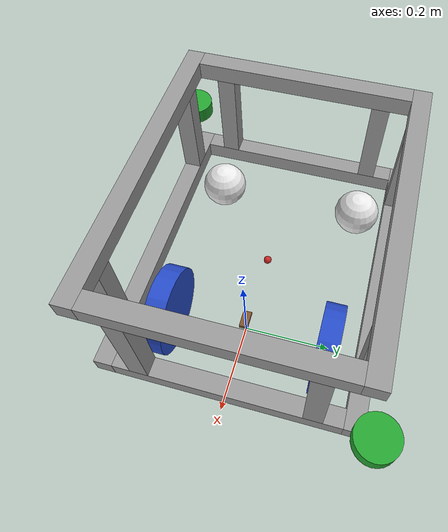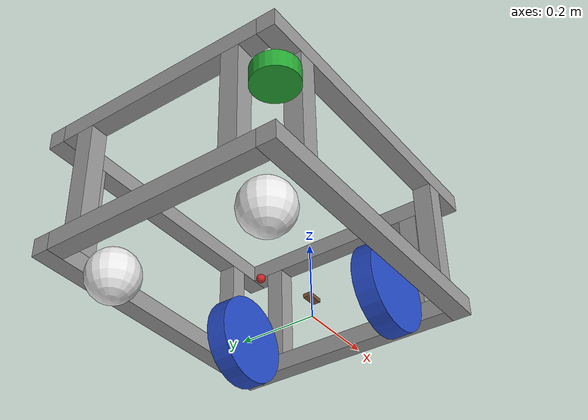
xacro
<?xml version='1.0'?>

<robot name="mensabot" xmlns:xacro="http://www.ros.org/wiki/xacro">

  <xacro:arg name="use_sim" default="false"/>

  <!-- nur wenn Simulation -->
  <xacro:if value="$(arg use_sim)">
    <xacro:include filename="$(find mensabot_sim)/urdf/mensabot.gazebo" />
  </xacro:if>

  <xacro:include filename="$(find mensabot_sim)/urdf/materials.xacro" />

  <joint name="base_footprint_joint" type="fixed">
    <origin xyz="0 0 -0.11" rpy="0 0 0" />
    <parent link="base_link"/>
    <child link="base_footprint" />
  </joint>

  <link name="base_footprint">
    <inertial>
      <mass value="25.0"/>
      <origin xyz="-0.08 0 0.21"/>      <!-- Center of mass -->
      <inertia
        ixx="1.2" iyy="1.5" izz="2.0"
        ixy="0" ixz="0" iyz="0"/>
    </inertial>
  </link>

  <link name='base_link'>
    <collision name="base_collision">
      <origin xyz="-0.2 0 0.15" rpy="0 0 0"/>       <!-- Collision geometry -->
      <geometry>
        <box size="0.7 0.55 0.01"/>
      </geometry>
    </collision>

    <collision name='left_caster_collision'>
      <origin xyz="-0.45 0.2 -0.0475" rpy=" 0 0 0"/>
      <geometry>
        <sphere radius="0.0625"/>
      </geometry>
    </collision>

    <visual name='left_caster_visual'>
      <origin xyz="-0.45 0.2 -0.0475 " rpy=" 0 0 0"/>
      <geometry>
        <sphere radius="0.0625"/>
      </geometry>
      <material name="white"/>
    </visual>

    <collision name='right_caster_collision'>
      <origin xyz="-0.45 -0.2 -0.0475" rpy=" 0 0 0"/>
      <geometry>
        <sphere radius="0.0625"/>
      </geometry>
    </collision>

    <visual name='right_caster_visual'>
      <origin xyz="-0.45 -0.2 -0.0475" rpy=" 0 0 0"/>
      <geometry>
        <sphere radius="0.0625"/>
      </geometry>
      <material name="white"/>
    </visual>
  </link>

  <gazebo reference="base_link">
    <material>Gazebo/Orange</material>
  </gazebo>

  <!--CENTER LINK-->

  <joint name="center_joint" type="fixed">
    <origin xyz="-0.2 0 0" rpy="0 0 0" />
    <parent link="base_link"/>
    <child link="center_link" />
  </joint>

  <link name="center_link">
    <visual name='center_visual'>
       <geometry>
         <sphere radius="0.01"/>
       </geometry>
       <material name="red"/>
    </visual>
  </link>

<!-- Bottom Layer -->

  <joint name="bottom_front_rod_joint" type="fixed">
    <origin xyz="0.355 0 0" rpy="0 0 ${pi/2}" />
    <parent link="center_link"/>
    <child link="bottom_front_rod_link" />
  </joint>

  <link name="bottom_front_rod_link">
    <visual name='bottom_front_rod_visual'>
       <geometry>
         <box size="0.538 0.045 0.045"/>
       </geometry>
       <material name="grey"/>
    </visual>

  </link>

  <joint name="bottom_rear_rod_joint" type="fixed">
    <origin xyz="-0.355 0 0" rpy="0 0 ${pi/2}" />
    <parent link="center_link"/>
    <child link="bottom_rear_rod_link" />
  </joint>

  <link name="bottom_rear_rod_link">
    <visual name='bottom_rear_rod_visual'>
       <geometry>
         <box size="0.538 0.045 0.045"/>
       </geometry>
       <material name="grey"/>
    </visual>

  </link>

  <joint name="bottom_left_rod_joint" type="fixed">
    <origin xyz="0.0 0.2915 0" rpy="0 0 0" />
    <parent link="center_link"/>
    <child link="bottom_left_rod_link" />
  </joint>

  <link name="bottom_left_rod_link">
    <visual name='bottom_left_rod_visual'>
       <geometry>
         <box size="0.755 0.045 0.045"/>
       </geometry>
       <material name="grey"/>
    </visual>

  </link>

  <joint name="bottom_right_rod_joint" type="fixed">
    <origin xyz="0.0 -0.2915 0" rpy="0 0 0" />
    <parent link="center_link"/>
    <child link="bottom_right_rod_link" />
  </joint>

  <link name="bottom_right_rod_link">
    <visual name='bottom_right_rod_visual'>
       <geometry>
         <box size="0.755 0.045 0.045"/>
       </geometry>
       <material name="grey"/>
    </visual>

  </link>

  <!-- Top Layer -->

  <joint name="top_front_rod_joint" type="fixed">
    <origin xyz="0.355 0 0.295" rpy="0 0 ${pi/2}" />
    <parent link="center_link"/>
    <child link="top_front_rod_link" />
  </joint>

  <link name="top_front_rod_link">
    <visual name='top_front_rod_visual'>
       <geometry>
         <box size="0.538 0.045 0.045"/>
       </geometry>
       <material name="grey"/>
    </visual>

  </link>

  <joint name="top_rear_rod_joint" type="fixed">
    <origin xyz="-0.355 0 0.295" rpy="0 0 ${pi/2}" />
    <parent link="center_link"/>
    <child link="top_rear_rod_link" />
  </joint>

  <link name="top_rear_rod_link">
    <visual name='top_rear_rod_visual'>
       <geometry>
         <box size="0.538 0.045 0.045"/>
       </geometry>
       <material name="grey"/>
    </visual>

  </link>

  <joint name="top_left_rod_joint" type="fixed">
    <origin xyz="0.0 0.2915 0.295" rpy="0 0 0" />
    <parent link="center_link"/>
    <child link="top_left_rod_link" />
  </joint>

  <link name="top_left_rod_link">
    <visual name='top_left_rod_visual'>
       <geometry>
         <box size="0.755 0.045 0.045"/>
       </geometry>
       <material name="grey"/>
    </visual>

  </link>

  <joint name="top_right_rod_joint" type="fixed">
    <origin xyz="0.0 -0.2915 0.295" rpy="0 0 0" />
    <parent link="center_link"/>
    <child link="top_right_rod_link" />
  </joint>

  <link name="top_right_rod_link">
    <visual name='top_right_rod_visual'>
       <geometry>
         <box size="0.755 0.045 0.045"/>
       </geometry>
       <material name="grey"/>
    </visual>

  </link>

  <!-- Vertical Rods -->

  <joint name="front_right1_joint" type="fixed">
    <origin xyz="0.355 0.2015 0.1475" rpy="0 ${pi/2} 0" />
    <parent link="center_link"/>
    <child link="front_right1_link" />
  </joint>

  <link name="front_right1_link">
    <visual name='front_right1_visual'>
       <geometry>
         <box size="0.25 0.045 0.045"/>
       </geometry>
       <material name="grey"/>
    </visual>

  </link>

  <joint name="front_left1_joint" type="fixed">
    <origin xyz="0.355 -0.2015 0.1475" rpy="0 ${pi/2} 0" />
    <parent link="center_link"/>
    <child link="front_left1_link" />
  </joint>

  <link name="front_left1_link">
    <visual name='front_left1_visual'>
       <geometry>
         <box size="0.25 0.045 0.045"/>
       </geometry>
       <material name="grey"/>
    </visual>

  </link>

  <joint name="front_right2_joint" type="fixed">
    <origin xyz="0.265 0.2915 0.1475" rpy="0 ${pi/2} 0" />
    <parent link="center_link"/>
    <child link="front_right2_link" />
  </joint>

  <link name="front_right2_link">
    <visual name='front_right2_visual'>
       <geometry>
         <box size="0.25 0.045 0.045"/>
       </geometry>
       <material name="grey"/>
    </visual>

  </link>

  <joint name="front_left2_joint" type="fixed">
    <origin xyz="0.265 -0.2915 0.1475" rpy="0 ${pi/2} 0" />
    <parent link="center_link"/>
    <child link="front_left2_link" />
  </joint>

  <link name="front_left2_link">
    <visual name='front_left2_visual'>
       <geometry>
         <box size="0.25 0.045 0.045"/>
       </geometry>
       <material name="grey"/>
    </visual>

  </link>

  <joint name="back_left1_joint" type="fixed">
    <origin xyz="-0.355 -0.2015 0.1475" rpy="0 ${pi/2} 0" />
    <parent link="center_link"/>
    <child link="back_left1_link" />
  </joint>

  <link name="back_left1_link">
    <visual name='back_left1_visual'>
       <geometry>
         <box size="0.25 0.045 0.045"/>
       </geometry>
       <material name="grey"/>
    </visual>

  </link>

  <joint name="back_right1_joint" type="fixed">
    <origin xyz="-0.355 0.2015 0.1475" rpy="0 ${pi/2} 0" />
    <parent link="center_link"/>
    <child link="back_right1_link" />
  </joint>

  <link name="back_right1_link">
    <visual name='back_right1_visual'>
       <geometry>
         <box size="0.25 0.045 0.045"/>
       </geometry>
       <material name="grey"/>
    </visual>

  </link>

  <joint name="back_left2_joint" type="fixed">
    <origin xyz="-0.265 -0.2915 0.1475" rpy="0 ${pi/2} 0" />
    <parent link="center_link"/>
    <child link="back_left2_link" />
  </joint>

  <link name="back_left2_link">
    <visual name='back_left2_visual'>
       <geometry>
         <box size="0.25 0.045 0.045"/>
       </geometry>
       <material name="grey"/>
    </visual>

  </link>

  <joint name="back_right2_joint" type="fixed">
    <origin xyz="-0.265 0.2915 0.1475" rpy="0 ${pi/2} 0" />
    <parent link="center_link"/>
    <child link="back_right2_link" />
  </joint>

  <link name="back_right2_link">
    <visual name='back_right2_visual'>
       <geometry>
         <box size="0.25 0.045 0.045"/>
       </geometry>
       <material name="grey"/>
    </visual>

  </link>

  <!--LEFT WHEEL-->

  <joint type="continuous" name="left_wheel_joint">
    <origin xyz="0.0 0.2 0" rpy="0 0 0"/>
    <child link="left_wheel"/>
    <parent link="base_link"/>
    <axis xyz="0 1 0" rpy="0 0 0"/>
    <limit effort="100" velocity="10"/>
    <dynamics damping="1.0" friction="1.0"/>
  </joint>

  <link name='left_wheel'>
    <inertial>
      <mass value="5.0"/>
      <origin xyz="0 0 0" rpy="0 1.5707 1.5707"/>
      <inertia ixx="0.014" ixy="0" ixz="0" iyy="0.014" iyz="0" izz="0.025" />
    </inertial>

    <collision>
      <origin xyz="0 0 0" rpy="0 1.5707 1.5707"/>
      <geometry>
        <cylinder radius=".11" length=".05"/>
      </geometry>
    </collision>

    <visual name='left_wheel_visual'>
      <origin xyz="0 0 0" rpy="0 1.5707 1.5707"/>
      <geometry>
        <cylinder radius=".11" length=".05"/>
      </geometry>
      <material name="blue"/>
    </visual>
  </link>

  <gazebo reference="left_wheel">
    <mu1>1.2</mu1>
    <mu2>1.2</mu2>
    <kp>10000.0</kp>
    <kd>10.0</kd>
    <minDepth>0.0001</minDepth>
    <maxVel>1.0</maxVel>
    <material>Gazebo/Blue</material>
  </gazebo>

  <!--RIGHT WHEEL-->

  <joint type="continuous" name="right_wheel_joint">
    <origin xyz="0.0 -0.2 0" rpy="0 0 0"/>
    <child link="right_wheel"/>
    <parent link="base_link"/>
    <axis xyz="0 1 0" rpy="0 0 0"/>
    <limit effort="100" velocity="10"/>
    <dynamics damping="1.0" friction="1.0"/>
  </joint>

  <link name='right_wheel'>
    <inertial>
      <mass value="5.0"/>
      <origin xyz="0 0 0" rpy="0 1.5707 1.5707"/>
      <inertia ixx="0.014" ixy="0" ixz="0" iyy="0.014" iyz="0" izz="0.025" />
    </inertial>

    <collision>
      <origin xyz="0 0 0" rpy="0 1.5707 1.5707"/>
      <geometry>
        <cylinder radius=".11" length=".05"/>
      </geometry>
    </collision>

    <visual name='right_wheel_visual'>
      <origin xyz="0 0 0" rpy="0 1.5707 1.5707"/>
      <geometry>
        <cylinder radius=".11" length=".05"/>
      </geometry>
      <material name="blue"/>
    </visual>
  </link>

  <gazebo reference="right_wheel">
    <mu1>1.2</mu1>
    <mu2>1.2</mu2>
    <kp>10000.0</kp>
    <kd>10.0</kd>
    <minDepth>0.0001</minDepth>
    <maxVel>1.0</maxVel>
    <material>Gazebo/Blue</material>
  </gazebo>

  <gazebo reference="base_link">
    <mu1>0.0002</mu1>
    <mu2>0.0002</mu2>
  </gazebo>

  <joint name="imu_joint" type="fixed">
    <origin xyz="0.0 0 0.05" rpy="0 0 0" />
    <parent link="base_link"/>
    <child link="imu_link" />
  </joint>

  <link name="imu_link">
    <visual name='imu_visual'>
       <geometry>
         <box size=".04 .02 .01"/>
       </geometry>
       <material name="brown"/>
    </visual>
  </link>

  <gazebo reference="imu_link">
    <mu1>0.2</mu1>
    <mu2>0.2</mu2>
    <material>Gazebo/BROWN</material>
  </gazebo>

  <!--FRONT LASER SCANNER  -->

  <joint type="fixed" name="scan_front_joint">
    <origin xyz="0.4 0.33 0.1" rpy="0 0 0"/>     <!--origin xyz="0.3775 0.314 0.1" rpy="0 0 0"/-->
    <child link="scan_front_link"/>
    <parent link="center_link"/>
    <axis xyz="0 1 0" rpy="0 0 0"/>
  </joint>

  <link name='scan_front_link'>

    <visual name='scan_front_link_visual'>
      <origin xyz="0 0 0" rpy="0 0 0"/>
      <geometry>
        <cylinder radius=".05" length=".04"/>
      </geometry>
      <material name="green"/>
    </visual>
  </link>

  <gazebo reference="scan_front_link">
    <selfCollide>false</selfCollide>
    <mu1 value="0.05" />
    <mu2 value="0.05" />
    <material>Gazebo/GREEN</material>
  </gazebo>

  <!--REAR LASER SCANNER  -->

  <joint type="fixed" name="scan_rear_joint">
    <origin xyz="-0.4 -0.33 0.1" rpy="0 0 ${pi}"/>
    <child link="scan_rear_link"/>
    <parent link="center_link"/>
    <axis xyz="0 1 0" rpy="0 0 0"/>
  </joint>

  <link name='scan_rear_link'>

    <visual name='scan_rear_link_visual'>
      <origin xyz="0 0 0" rpy="0 0 0"/>
      <geometry>
        <cylinder radius=".05" length=".04"/>
      </geometry>
      <material name="green"/>
    </visual>
  </link>

  <gazebo reference="scan_rear_link">
    <selfCollide>false</selfCollide>
    <mu1 value="0.05" />
    <mu2 value="0.05" />
    <material>Gazebo/GREEN</material>
  </gazebo>

  <!-- Battery -->

</robot>
